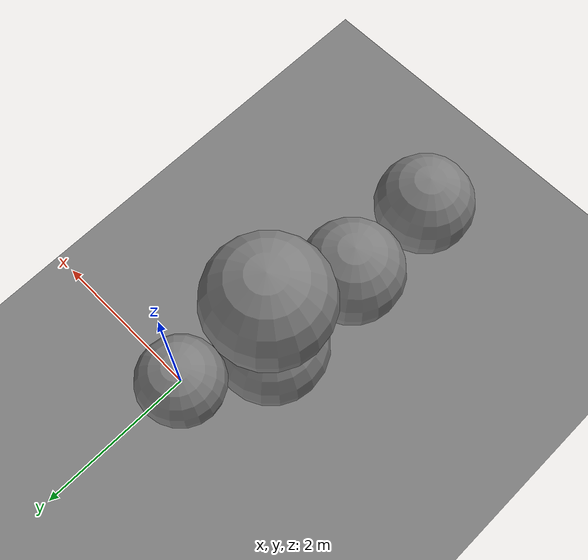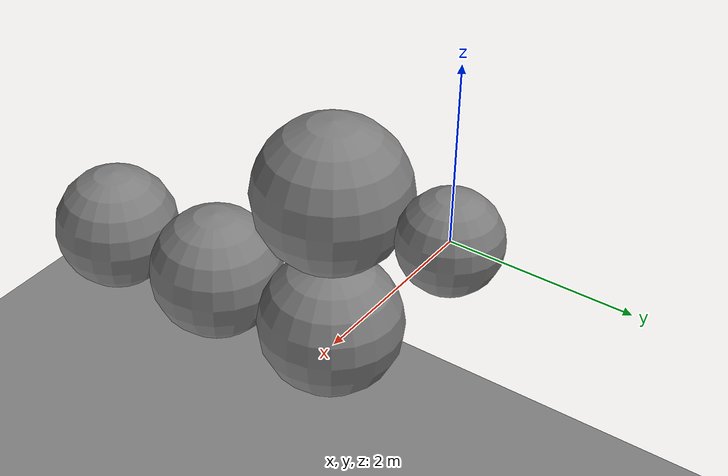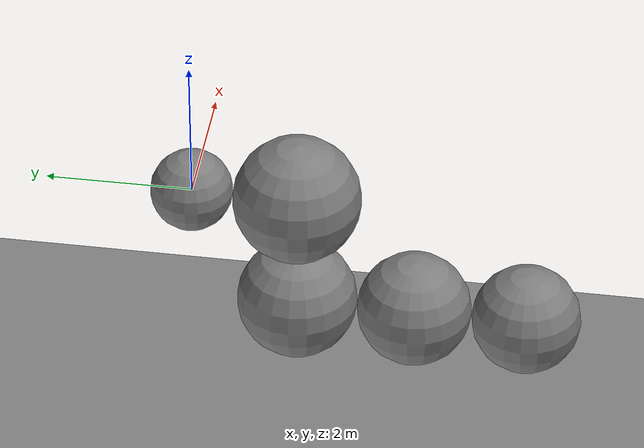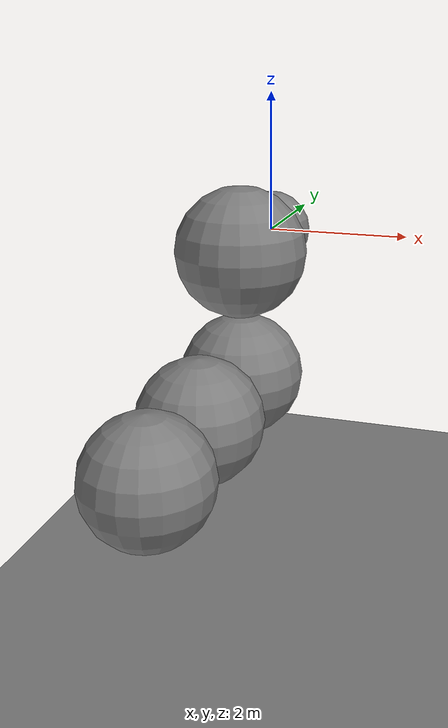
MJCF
<mujoco model="unnamed_model">
  <default>
    <default class="/"/>
  </default>
  <worldbody>
    <geom name="//unnamed_geom_0" class="/" type="plane" size="100 100 0.10000000000000001" pos="0 0 -5.2695291766802219"/>
    <body name="body0" pos="0 0 0">
      <joint name="//unnamed_joint_0" class="/" type="free"/>
      <geom name="//unnamed_geom_1" class="/" type="sphere" size="0.56415140211447212 0.56415140211447212 0.56415140211447212"/>
      <body name="body1" pos="0 -1.4473703433252521 0">
        <geom name="//unnamed_geom_2" class="/" type="sphere" size="0.88321894121077982 0.88321894121077982 0.88321894121077982"/>
        <joint name="//unnamed_joint_1" class="/" type="hinge" axis="0 1 0"/>
        <body name="body2" pos="0 0 -1.7175827059636672">
          <geom name="//unnamed_geom_3" class="/" type="sphere" size="0.83436376475288743 0.83436376475288743 0.83436376475288743"/>
          <joint name="//unnamed_joint_2" class="/" type="hinge" axis="0 0 1"/>
          <body name="body3" pos="0 -1.627251237210058 0">
            <geom name="//unnamed_geom_4" class="/" type="sphere" size="0.79288747245717062 0.79288747245717062 0.79288747245717062"/>
            <joint name="//unnamed_joint_3" class="/" type="hinge" axis="0 1 0"/>
            <body name="body4" pos="0 -1.5483960404033998 0">
              <geom name="//unnamed_geom_5" class="/" type="sphere" size="0.75550856794622923 0.75550856794622923 0.75550856794622923"/>
              <joint name="//unnamed_joint_4" class="/" type="hinge" axis="0 1 0"/>
            </body>
          </body>
        </body>
      </body>
    </body>
  </worldbody>
  <actuator>
    <motor name="body1_motor" class="/" ctrllimited="true" ctrlrange="-100 100" joint="//unnamed_joint_1"/>
    <motor name="body2_motor" class="/" ctrllimited="true" ctrlrange="-100 100" joint="//unnamed_joint_2"/>
    <motor name="body3_motor" class="/" ctrllimited="true" ctrlrange="-100 100" joint="//unnamed_joint_3"/>
    <motor name="body4_motor" class="/" ctrllimited="true" ctrlrange="-100 100" joint="//unnamed_joint_4"/>
  </actuator>
</mujoco>
